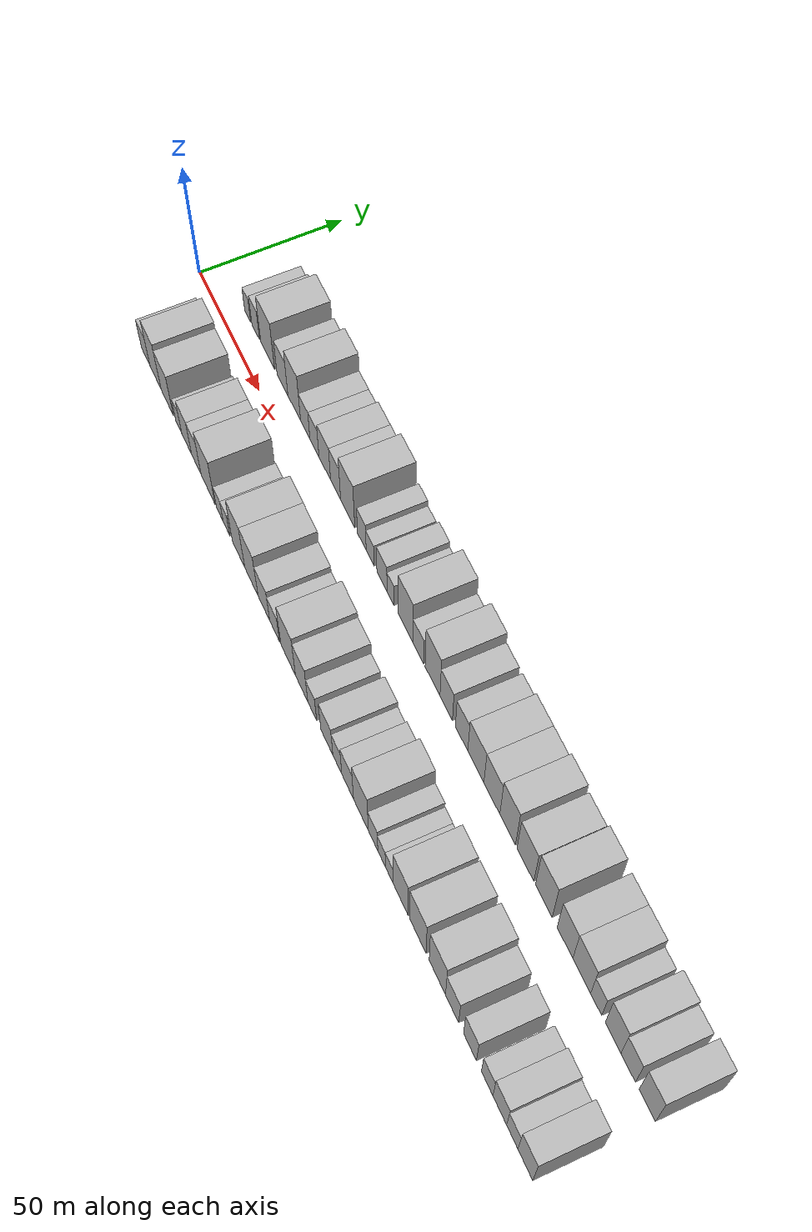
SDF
<sdf version="1.6">
 <world name="default">
  <scene>
   <sky><clouds><speed>12</speed></clouds></sky>
   <ambient>0.4 0.4 0.4 1</ambient>
   <background>0.7 0.7 0.7 1</background>
   <shadows>1</shadows>
  </scene>
  <gravity>0 0 -9.8066</gravity>
  <magnetic_field>6e-06 2.3e-05 -4.2e-05</magnetic_field>
  <physics default="0" name="default_physics" type="ode">
   <ode>
    <solver>
     <type>quick</type>
     <iters>10</iters>
     <sor>1.0</sor>
     <use_dynamic_moi_rescaling>0</use_dynamic_moi_rescaling>
    </solver>
    <constraints>
     <cfm>0</cfm>
     <erp>0.2</erp>
     <contact_max_correcting_vel>100</contact_max_correcting_vel>
     <contact_surface_layer>0.001</contact_surface_layer>
    </constraints>
   </ode>
   <max_step_size>0.004</max_step_size>
   <real_time_factor>1</real_time_factor>
   <real_time_update_rate>250</real_time_update_rate>
  </physics>
  <light name="sun" type="directional">
   <pose>0 0 10 0 0 0</pose>
   <diffuse>0.8 0.8 0.8 1</diffuse>
   <specular>0.2 0.2 0.2 1</specular>
   <attenuation>
    <range>1000</range>
    <constant>0.9</constant>
    <linear>0.01</linear>
    <quadratic>0.001</quadratic>
   </attenuation>
   <direction>-0.5 0.1 -0.9</direction>
  </light>
  <model name="building_1">
   <static>1</static>
   <pose>22.5094 17.5000 0 0.000000 0.000000 1.570796</pose>
   <link name="link">
    <pose>0 0 6.00 0 0 0</pose>
    <collision name="collision"><geometry><box><size>20.0000 5.0188 12.0000</size></box></geometry></collision>
    <visual name="visual">
     <cast_shadows>0</cast_shadows>
     <geometry><box><size>20.0000 5.0188 12.0000</size></box></geometry>
     <material>
      <script>
       <uri>model://HANNAS_wall/materials/scripts</uri>
       <uri>model://HANNAS_wall/materials/textures</uri>
       <name>vrc/HANNAS_wall</name>
      </script>
     </material>
    </visual>
   </link>
  </model>
  <model name="building_2">
   <static>1</static>
   <pose>29.2193 17.5000 0 0.000000 0.000000 1.570796</pose>
   <link name="link">
    <pose>0 0 7.50 0 0 0</pose>
    <collision name="collision"><geometry><box><size>20.0000 6.4010 15.0000</size></box></geometry></collision>
    <visual name="visual">
     <cast_shadows>0</cast_shadows>
     <geometry><box><size>20.0000 6.4010 15.0000</size></box></geometry>
     <material>
      <script>
       <uri>model://HANNAS_wall/materials/scripts</uri>
       <uri>model://HANNAS_wall/materials/textures</uri>
       <name>vrc/HANNAS_wall</name>
      </script>
     </material>
    </visual>
   </link>
  </model>
  <model name="building_3">
   <static>1</static>
   <pose>39.0551 17.5000 0 0.000000 0.000000 1.570796</pose>
   <link name="link">
    <pose>0 0 12.00 0 0 0</pose>
    <collision name="collision"><geometry><box><size>20.0000 11.2708 24.0000</size></box></geometry></collision>
    <visual name="visual">
     <cast_shadows>0</cast_shadows>
     <geometry><box><size>20.0000 11.2708 24.0000</size></box></geometry>
     <material>
      <script>
       <uri>model://HANNAS_wall/materials/scripts</uri>
       <uri>model://HANNAS_wall/materials/textures</uri>
       <name>vrc/HANNAS_wall</name>
      </script>
     </material>
    </visual>
   </link>
  </model>
  <model name="building_4">
   <static>1</static>
   <pose>51.0926 17.5000 0 0.000000 0.000000 1.570796</pose>
   <link name="link">
    <pose>0 0 9.00 0 0 0</pose>
    <collision name="collision"><geometry><box><size>20.0000 8.8041 18.0000</size></box></geometry></collision>
    <visual name="visual">
     <cast_shadows>0</cast_shadows>
     <geometry><box><size>20.0000 8.8041 18.0000</size></box></geometry>
     <material>
      <script>
       <uri>model://HANNAS_wall/materials/scripts</uri>
       <uri>model://HANNAS_wall/materials/textures</uri>
       <name>vrc/HANNAS_wall</name>
      </script>
     </material>
    </visual>
   </link>
  </model>
  <model name="building_5">
   <static>1</static>
   <pose>60.5405 17.5000 0 0.000000 0.000000 1.570796</pose>
   <link name="link">
    <pose>0 0 12.00 0 0 0</pose>
    <collision name="collision"><geometry><box><size>20.0000 10.0916 24.0000</size></box></geometry></collision>
    <visual name="visual">
     <cast_shadows>0</cast_shadows>
     <geometry><box><size>20.0000 10.0916 24.0000</size></box></geometry>
     <material>
      <script>
       <uri>model://HANNAS_wall/materials/scripts</uri>
       <uri>model://HANNAS_wall/materials/textures</uri>
       <name>vrc/HANNAS_wall</name>
      </script>
     </material>
    </visual>
   </link>
  </model>
  <model name="building_6">
   <static>1</static>
   <pose>69.2399 17.5000 0 0.000000 0.000000 1.570796</pose>
   <link name="link">
    <pose>0 0 7.50 0 0 0</pose>
    <collision name="collision"><geometry><box><size>20.0000 7.3073 15.0000</size></box></geometry></collision>
    <visual name="visual">
     <cast_shadows>0</cast_shadows>
     <geometry><box><size>20.0000 7.3073 15.0000</size></box></geometry>
     <material>
      <script>
       <uri>model://HANNAS_wall/materials/scripts</uri>
       <uri>model://HANNAS_wall/materials/textures</uri>
       <name>vrc/HANNAS_wall</name>
      </script>
     </material>
    </visual>
   </link>
  </model>
  <model name="building_7">
   <static>1</static>
   <pose>76.4125 17.5000 0 0.000000 0.000000 1.570796</pose>
   <link name="link">
    <pose>0 0 7.50 0 0 0</pose>
    <collision name="collision"><geometry><box><size>20.0000 7.0379 15.0000</size></box></geometry></collision>
    <visual name="visual">
     <cast_shadows>0</cast_shadows>
     <geometry><box><size>20.0000 7.0379 15.0000</size></box></geometry>
     <material>
      <script>
       <uri>model://HANNAS_wall/materials/scripts</uri>
       <uri>model://HANNAS_wall/materials/textures</uri>
       <name>vrc/HANNAS_wall</name>
      </script>
     </material>
    </visual>
   </link>
  </model>
  <model name="building_8">
   <static>1</static>
   <pose>84.3619 17.5000 0 0.000000 0.000000 1.570796</pose>
   <link name="link">
    <pose>0 0 9.00 0 0 0</pose>
    <collision name="collision"><geometry><box><size>20.0000 8.8611 18.0000</size></box></geometry></collision>
    <visual name="visual">
     <cast_shadows>0</cast_shadows>
     <geometry><box><size>20.0000 8.8611 18.0000</size></box></geometry>
     <material>
      <script>
       <uri>model://HANNAS_wall/materials/scripts</uri>
       <uri>model://HANNAS_wall/materials/textures</uri>
       <name>vrc/HANNAS_wall</name>
      </script>
     </material>
    </visual>
   </link>
  </model>
  <model name="building_9">
   <static>1</static>
   <pose>92.5973 17.5000 0 0.000000 0.000000 1.570796</pose>
   <link name="link">
    <pose>0 0 9.00 0 0 0</pose>
    <collision name="collision"><geometry><box><size>20.0000 7.6096 18.0000</size></box></geometry></collision>
    <visual name="visual">
     <cast_shadows>0</cast_shadows>
     <geometry><box><size>20.0000 7.6096 18.0000</size></box></geometry>
     <material>
      <script>
       <uri>model://HANNAS_wall/materials/scripts</uri>
       <uri>model://HANNAS_wall/materials/textures</uri>
       <name>vrc/HANNAS_wall</name>
      </script>
     </material>
    </visual>
   </link>
  </model>
  <model name="building_10">
   <static>1</static>
   <pose>101.7168 17.5000 0 0.000000 0.000000 1.570796</pose>
   <link name="link">
    <pose>0 0 12.00 0 0 0</pose>
    <collision name="collision"><geometry><box><size>20.0000 10.6294 24.0000</size></box></geometry></collision>
    <visual name="visual">
     <cast_shadows>0</cast_shadows>
     <geometry><box><size>20.0000 10.6294 24.0000</size></box></geometry>
     <material>
      <script>
       <uri>model://HANNAS_wall/materials/scripts</uri>
       <uri>model://HANNAS_wall/materials/textures</uri>
       <name>vrc/HANNAS_wall</name>
      </script>
     </material>
    </visual>
   </link>
  </model>
  <model name="building_11">
   <static>1</static>
   <pose>112.2217 17.5000 0 0.000000 0.000000 1.570796</pose>
   <link name="link">
    <pose>0 0 7.50 0 0 0</pose>
    <collision name="collision"><geometry><box><size>20.0000 6.3804 15.0000</size></box></geometry></collision>
    <visual name="visual">
     <cast_shadows>0</cast_shadows>
     <geometry><box><size>20.0000 6.3804 15.0000</size></box></geometry>
     <material>
      <script>
       <uri>model://HANNAS_wall/materials/scripts</uri>
       <uri>model://HANNAS_wall/materials/textures</uri>
       <name>vrc/HANNAS_wall</name>
      </script>
     </material>
    </visual>
   </link>
  </model>
  <model name="building_12">
   <static>1</static>
   <pose>118.2914 17.5000 0 0.000000 0.000000 1.570796</pose>
   <link name="link">
    <pose>0 0 6.00 0 0 0</pose>
    <collision name="collision"><geometry><box><size>20.0000 5.7588 12.0000</size></box></geometry></collision>
    <visual name="visual">
     <cast_shadows>0</cast_shadows>
     <geometry><box><size>20.0000 5.7588 12.0000</size></box></geometry>
     <material>
      <script>
       <uri>model://HANNAS_wall/materials/scripts</uri>
       <uri>model://HANNAS_wall/materials/textures</uri>
       <name>vrc/HANNAS_wall</name>
      </script>
     </material>
    </visual>
   </link>
  </model>
  <model name="building_13">
   <static>1</static>
   <pose>126.8574 17.5000 0 0.000000 0.000000 1.570796</pose>
   <link name="link">
    <pose>0 0 7.50 0 0 0</pose>
    <collision name="collision"><geometry><box><size>20.0000 7.3732 15.0000</size></box></geometry></collision>
    <visual name="visual">
     <cast_shadows>0</cast_shadows>
     <geometry><box><size>20.0000 7.3732 15.0000</size></box></geometry>
     <material>
      <script>
       <uri>model://HANNAS_wall/materials/scripts</uri>
       <uri>model://HANNAS_wall/materials/textures</uri>
       <name>vrc/HANNAS_wall</name>
      </script>
     </material>
    </visual>
   </link>
  </model>
  <model name="building_14">
   <static>1</static>
   <pose>133.0565 17.5000 0 0.000000 0.000000 1.570796</pose>
   <link name="link">
    <pose>0 0 6.00 0 0 0</pose>
    <collision name="collision"><geometry><box><size>20.0000 5.0249 12.0000</size></box></geometry></collision>
    <visual name="visual">
     <cast_shadows>0</cast_shadows>
     <geometry><box><size>20.0000 5.0249 12.0000</size></box></geometry>
     <material>
      <script>
       <uri>model://HANNAS_wall/materials/scripts</uri>
       <uri>model://HANNAS_wall/materials/textures</uri>
       <name>vrc/HANNAS_wall</name>
      </script>
     </material>
    </visual>
   </link>
  </model>
  <model name="building_15">
   <static>1</static>
   <pose>143.6724 17.5000 0 0.000000 0.000000 1.570796</pose>
   <link name="link">
    <pose>0 0 12.00 0 0 0</pose>
    <collision name="collision"><geometry><box><size>20.0000 10.2068 24.0000</size></box></geometry></collision>
    <visual name="visual">
     <cast_shadows>0</cast_shadows>
     <geometry><box><size>20.0000 10.2068 24.0000</size></box></geometry>
     <material>
      <script>
       <uri>model://HANNAS_wall/materials/scripts</uri>
       <uri>model://HANNAS_wall/materials/textures</uri>
       <name>vrc/HANNAS_wall</name>
      </script>
     </material>
    </visual>
   </link>
  </model>
  <model name="building_16">
   <static>1</static>
   <pose>152.4874 17.5000 0 0.000000 0.000000 1.570796</pose>
   <link name="link">
    <pose>0 0 7.50 0 0 0</pose>
    <collision name="collision"><geometry><box><size>20.0000 7.4232 15.0000</size></box></geometry></collision>
    <visual name="visual">
     <cast_shadows>0</cast_shadows>
     <geometry><box><size>20.0000 7.4232 15.0000</size></box></geometry>
     <material>
      <script>
       <uri>model://HANNAS_wall/materials/scripts</uri>
       <uri>model://HANNAS_wall/materials/textures</uri>
       <name>vrc/HANNAS_wall</name>
      </script>
     </material>
    </visual>
   </link>
  </model>
  <model name="building_17">
   <static>1</static>
   <pose>162.2632 17.5000 0 0.000000 0.000000 1.570796</pose>
   <link name="link">
    <pose>0 0 12.00 0 0 0</pose>
    <collision name="collision"><geometry><box><size>20.0000 10.1284 24.0000</size></box></geometry></collision>
    <visual name="visual">
     <cast_shadows>0</cast_shadows>
     <geometry><box><size>20.0000 10.1284 24.0000</size></box></geometry>
     <material>
      <script>
       <uri>model://HANNAS_wall/materials/scripts</uri>
       <uri>model://HANNAS_wall/materials/textures</uri>
       <name>vrc/HANNAS_wall</name>
      </script>
     </material>
    </visual>
   </link>
  </model>
  <model name="building_18">
   <static>1</static>
   <pose>171.4944 17.5000 0 0.000000 0.000000 1.570796</pose>
   <link name="link">
    <pose>0 0 9.00 0 0 0</pose>
    <collision name="collision"><geometry><box><size>20.0000 8.3341 18.0000</size></box></geometry></collision>
    <visual name="visual">
     <cast_shadows>0</cast_shadows>
     <geometry><box><size>20.0000 8.3341 18.0000</size></box></geometry>
     <material>
      <script>
       <uri>model://HANNAS_wall/materials/scripts</uri>
       <uri>model://HANNAS_wall/materials/textures</uri>
       <name>vrc/HANNAS_wall</name>
      </script>
     </material>
    </visual>
   </link>
  </model>
  <model name="building_19">
   <static>1</static>
   <pose>181.7442 17.5000 0 0.000000 0.000000 1.570796</pose>
   <link name="link">
    <pose>0 0 9.00 0 0 0</pose>
    <collision name="collision"><geometry><box><size>20.0000 8.1655 18.0000</size></box></geometry></collision>
    <visual name="visual">
     <cast_shadows>0</cast_shadows>
     <geometry><box><size>20.0000 8.1655 18.0000</size></box></geometry>
     <material>
      <script>
       <uri>model://HANNAS_wall/materials/scripts</uri>
       <uri>model://HANNAS_wall/materials/textures</uri>
       <name>vrc/HANNAS_wall</name>
      </script>
     </material>
    </visual>
   </link>
  </model>
  <model name="building_20">
   <static>1</static>
   <pose>191.0521 17.5000 0 0.000000 0.000000 1.570796</pose>
   <link name="link">
    <pose>0 0 10.50 0 0 0</pose>
    <collision name="collision"><geometry><box><size>20.0000 10.4504 21.0000</size></box></geometry></collision>
    <visual name="visual">
     <cast_shadows>0</cast_shadows>
     <geometry><box><size>20.0000 10.4504 21.0000</size></box></geometry>
     <material>
      <script>
       <uri>model://HANNAS_wall/materials/scripts</uri>
       <uri>model://HANNAS_wall/materials/textures</uri>
       <name>vrc/HANNAS_wall</name>
      </script>
     </material>
    </visual>
   </link>
  </model>
  <model name="building_21">
   <static>1</static>
   <pose>201.3887 17.5000 0 0.000000 0.000000 1.570796</pose>
   <link name="link">
    <pose>0 0 10.50 0 0 0</pose>
    <collision name="collision"><geometry><box><size>20.0000 10.2229 21.0000</size></box></geometry></collision>
    <visual name="visual">
     <cast_shadows>0</cast_shadows>
     <geometry><box><size>20.0000 10.2229 21.0000</size></box></geometry>
     <material>
      <script>
       <uri>model://HANNAS_wall/materials/scripts</uri>
       <uri>model://HANNAS_wall/materials/textures</uri>
       <name>vrc/HANNAS_wall</name>
      </script>
     </material>
    </visual>
   </link>
  </model>
  <model name="building_22">
   <static>1</static>
   <pose>211.4315 17.5000 0 0.000000 0.000000 1.570796</pose>
   <link name="link">
    <pose>0 0 12.00 0 0 0</pose>
    <collision name="collision"><geometry><box><size>20.0000 9.8627 24.0000</size></box></geometry></collision>
    <visual name="visual">
     <cast_shadows>0</cast_shadows>
     <geometry><box><size>20.0000 9.8627 24.0000</size></box></geometry>
     <material>
      <script>
       <uri>model://HANNAS_wall/materials/scripts</uri>
       <uri>model://HANNAS_wall/materials/textures</uri>
       <name>vrc/HANNAS_wall</name>
      </script>
     </material>
    </visual>
   </link>
  </model>
  <model name="building_23">
   <static>1</static>
   <pose>222.5453 17.5000 0 0.000000 0.000000 1.570796</pose>
   <link name="link">
    <pose>0 0 10.50 0 0 0</pose>
    <collision name="collision"><geometry><box><size>20.0000 10.3650 21.0000</size></box></geometry></collision>
    <visual name="visual">
     <cast_shadows>0</cast_shadows>
     <geometry><box><size>20.0000 10.3650 21.0000</size></box></geometry>
     <material>
      <script>
       <uri>model://HANNAS_wall/materials/scripts</uri>
       <uri>model://HANNAS_wall/materials/textures</uri>
       <name>vrc/HANNAS_wall</name>
      </script>
     </material>
    </visual>
   </link>
  </model>
  <model name="building_24">
   <static>1</static>
   <pose>233.7784 17.5000 0 0.000000 0.000000 1.570796</pose>
   <link name="link">
    <pose>0 0 12.00 0 0 0</pose>
    <collision name="collision"><geometry><box><size>20.0000 10.1011 24.0000</size></box></geometry></collision>
    <visual name="visual">
     <cast_shadows>0</cast_shadows>
     <geometry><box><size>20.0000 10.1011 24.0000</size></box></geometry>
     <material>
      <script>
       <uri>model://HANNAS_wall/materials/scripts</uri>
       <uri>model://HANNAS_wall/materials/textures</uri>
       <name>vrc/HANNAS_wall</name>
      </script>
     </material>
    </visual>
   </link>
  </model>
  <model name="building_25">
   <static>1</static>
   <pose>246.5001 17.5000 0 0.000000 0.000000 1.570796</pose>
   <link name="link">
    <pose>0 0 10.50 0 0 0</pose>
    <collision name="collision"><geometry><box><size>20.0000 9.3423 21.0000</size></box></geometry></collision>
    <visual name="visual">
     <cast_shadows>0</cast_shadows>
     <geometry><box><size>20.0000 9.3423 21.0000</size></box></geometry>
     <material>
      <script>
       <uri>model://HANNAS_wall/materials/scripts</uri>
       <uri>model://HANNAS_wall/materials/textures</uri>
       <name>vrc/HANNAS_wall</name>
      </script>
     </material>
    </visual>
   </link>
  </model>
  <model name="building_26">
   <static>1</static>
   <pose>256.3676 17.5000 0 0.000000 0.000000 1.570796</pose>
   <link name="link">
    <pose>0 0 10.50 0 0 0</pose>
    <collision name="collision"><geometry><box><size>20.0000 10.3927 21.0000</size></box></geometry></collision>
    <visual name="visual">
     <cast_shadows>0</cast_shadows>
     <geometry><box><size>20.0000 10.3927 21.0000</size></box></geometry>
     <material>
      <script>
       <uri>model://HANNAS_wall/materials/scripts</uri>
       <uri>model://HANNAS_wall/materials/textures</uri>
       <name>vrc/HANNAS_wall</name>
      </script>
     </material>
    </visual>
   </link>
  </model>
  <model name="building_27">
   <static>1</static>
   <pose>264.7600 17.5000 0 0.000000 0.000000 1.570796</pose>
   <link name="link">
    <pose>0 0 7.50 0 0 0</pose>
    <collision name="collision"><geometry><box><size>20.0000 6.3921 15.0000</size></box></geometry></collision>
    <visual name="visual">
     <cast_shadows>0</cast_shadows>
     <geometry><box><size>20.0000 6.3921 15.0000</size></box></geometry>
     <material>
      <script>
       <uri>model://HANNAS_wall/materials/scripts</uri>
       <uri>model://HANNAS_wall/materials/textures</uri>
       <name>vrc/HANNAS_wall</name>
      </script>
     </material>
    </visual>
   </link>
  </model>
  <model name="building_28">
   <static>1</static>
   <pose>274.4199 17.5000 0 0.000000 0.000000 1.570796</pose>
   <link name="link">
    <pose>0 0 10.50 0 0 0</pose>
    <collision name="collision"><geometry><box><size>20.0000 8.9277 21.0000</size></box></geometry></collision>
    <visual name="visual">
     <cast_shadows>0</cast_shadows>
     <geometry><box><size>20.0000 8.9277 21.0000</size></box></geometry>
     <material>
      <script>
       <uri>model://HANNAS_wall/materials/scripts</uri>
       <uri>model://HANNAS_wall/materials/textures</uri>
       <name>vrc/HANNAS_wall</name>
      </script>
     </material>
    </visual>
   </link>
  </model>
  <model name="building_29">
   <static>1</static>
   <pose>282.9135 17.5000 0 0.000000 0.000000 1.570796</pose>
   <link name="link">
    <pose>0 0 9.00 0 0 0</pose>
    <collision name="collision"><geometry><box><size>20.0000 8.0595 18.0000</size></box></geometry></collision>
    <visual name="visual">
     <cast_shadows>0</cast_shadows>
     <geometry><box><size>20.0000 8.0595 18.0000</size></box></geometry>
     <material>
      <script>
       <uri>model://HANNAS_wall/materials/scripts</uri>
       <uri>model://HANNAS_wall/materials/textures</uri>
       <name>vrc/HANNAS_wall</name>
      </script>
     </material>
    </visual>
   </link>
  </model>
  <model name="building_30">
   <static>1</static>
   <pose>293.4200 17.5000 0 0.000000 0.000000 1.570796</pose>
   <link name="link">
    <pose>0 0 10.50 0 0 0</pose>
    <collision name="collision"><geometry><box><size>20.0000 8.9536 21.0000</size></box></geometry></collision>
    <visual name="visual">
     <cast_shadows>0</cast_shadows>
     <geometry><box><size>20.0000 8.9536 21.0000</size></box></geometry>
     <material>
      <script>
       <uri>model://HANNAS_wall/materials/scripts</uri>
       <uri>model://HANNAS_wall/materials/textures</uri>
       <name>vrc/HANNAS_wall</name>
      </script>
     </material>
    </visual>
   </link>
  </model>
  <model name="building_31">
   <static>1</static>
   <pose>23.7137 -17.5000 0 0.000000 0.000000 1.570796</pose>
   <link name="link">
    <pose>0 0 7.50 0 0 0</pose>
    <collision name="collision"><geometry><box><size>20.0000 7.4273 15.0000</size></box></geometry></collision>
    <visual name="visual">
     <cast_shadows>0</cast_shadows>
     <geometry><box><size>20.0000 7.4273 15.0000</size></box></geometry>
     <material>
      <script>
       <uri>model://HANNAS_wall/materials/scripts</uri>
       <uri>model://HANNAS_wall/materials/textures</uri>
       <name>vrc/HANNAS_wall</name>
      </script>
     </material>
    </visual>
   </link>
  </model>
  <model name="building_32">
   <static>1</static>
   <pose>32.3466 -17.5000 0 0.000000 0.000000 1.570796</pose>
   <link name="link">
    <pose>0 0 12.00 0 0 0</pose>
    <collision name="collision"><geometry><box><size>20.0000 9.8386 24.0000</size></box></geometry></collision>
    <visual name="visual">
     <cast_shadows>0</cast_shadows>
     <geometry><box><size>20.0000 9.8386 24.0000</size></box></geometry>
     <material>
      <script>
       <uri>model://HANNAS_wall/materials/scripts</uri>
       <uri>model://HANNAS_wall/materials/textures</uri>
       <name>vrc/HANNAS_wall</name>
      </script>
     </material>
    </visual>
   </link>
  </model>
  <model name="building_33">
   <static>1</static>
   <pose>42.4667 -17.5000 0 0.000000 0.000000 1.570796</pose>
   <link name="link">
    <pose>0 0 10.50 0 0 0</pose>
    <collision name="collision"><geometry><box><size>20.0000 10.4016 21.0000</size></box></geometry></collision>
    <visual name="visual">
     <cast_shadows>0</cast_shadows>
     <geometry><box><size>20.0000 10.4016 21.0000</size></box></geometry>
     <material>
      <script>
       <uri>model://HANNAS_wall/materials/scripts</uri>
       <uri>model://HANNAS_wall/materials/textures</uri>
       <name>vrc/HANNAS_wall</name>
      </script>
     </material>
    </visual>
   </link>
  </model>
  <model name="building_34">
   <static>1</static>
   <pose>52.2176 -17.5000 0 0.000000 0.000000 1.570796</pose>
   <link name="link">
    <pose>0 0 6.00 0 0 0</pose>
    <collision name="collision"><geometry><box><size>20.0000 5.1002 12.0000</size></box></geometry></collision>
    <visual name="visual">
     <cast_shadows>0</cast_shadows>
     <geometry><box><size>20.0000 5.1002 12.0000</size></box></geometry>
     <material>
      <script>
       <uri>model://HANNAS_wall/materials/scripts</uri>
       <uri>model://HANNAS_wall/materials/textures</uri>
       <name>vrc/HANNAS_wall</name>
      </script>
     </material>
    </visual>
   </link>
  </model>
  <model name="building_35">
   <static>1</static>
   <pose>58.9409 -17.5000 0 0.000000 0.000000 1.570796</pose>
   <link name="link">
    <pose>0 0 9.00 0 0 0</pose>
    <collision name="collision"><geometry><box><size>20.0000 8.3465 18.0000</size></box></geometry></collision>
    <visual name="visual">
     <cast_shadows>0</cast_shadows>
     <geometry><box><size>20.0000 8.3465 18.0000</size></box></geometry>
     <material>
      <script>
       <uri>model://HANNAS_wall/materials/scripts</uri>
       <uri>model://HANNAS_wall/materials/textures</uri>
       <name>vrc/HANNAS_wall</name>
      </script>
     </material>
    </visual>
   </link>
  </model>
  <model name="building_36">
   <static>1</static>
   <pose>67.0634 -17.5000 0 0.000000 0.000000 1.570796</pose>
   <link name="link">
    <pose>0 0 9.00 0 0 0</pose>
    <collision name="collision"><geometry><box><size>20.0000 7.8986 18.0000</size></box></geometry></collision>
    <visual name="visual">
     <cast_shadows>0</cast_shadows>
     <geometry><box><size>20.0000 7.8986 18.0000</size></box></geometry>
     <material>
      <script>
       <uri>model://HANNAS_wall/materials/scripts</uri>
       <uri>model://HANNAS_wall/materials/textures</uri>
       <name>vrc/HANNAS_wall</name>
      </script>
     </material>
    </visual>
   </link>
  </model>
  <model name="building_37">
   <static>1</static>
   <pose>76.7283 -17.5000 0 0.000000 0.000000 1.570796</pose>
   <link name="link">
    <pose>0 0 12.00 0 0 0</pose>
    <collision name="collision"><geometry><box><size>20.0000 11.4311 24.0000</size></box></geometry></collision>
    <visual name="visual">
     <cast_shadows>0</cast_shadows>
     <geometry><box><size>20.0000 11.4311 24.0000</size></box></geometry>
     <material>
      <script>
       <uri>model://HANNAS_wall/materials/scripts</uri>
       <uri>model://HANNAS_wall/materials/textures</uri>
       <name>vrc/HANNAS_wall</name>
      </script>
     </material>
    </visual>
   </link>
  </model>
  <model name="building_38">
   <static>1</static>
   <pose>86.1244 -17.5000 0 0.000000 0.000000 1.570796</pose>
   <link name="link">
    <pose>0 0 6.00 0 0 0</pose>
    <collision name="collision"><geometry><box><size>20.0000 5.3612 12.0000</size></box></geometry></collision>
    <visual name="visual">
     <cast_shadows>0</cast_shadows>
     <geometry><box><size>20.0000 5.3612 12.0000</size></box></geometry>
     <material>
      <script>
       <uri>model://HANNAS_wall/materials/scripts</uri>
       <uri>model://HANNAS_wall/materials/textures</uri>
       <name>vrc/HANNAS_wall</name>
      </script>
     </material>
    </visual>
   </link>
  </model>
  <model name="building_39">
   <static>1</static>
   <pose>91.4952 -17.5000 0 0.000000 0.000000 1.570796</pose>
   <link name="link">
    <pose>0 0 6.00 0 0 0</pose>
    <collision name="collision"><geometry><box><size>20.0000 5.3804 12.0000</size></box></geometry></collision>
    <visual name="visual">
     <cast_shadows>0</cast_shadows>
     <geometry><box><size>20.0000 5.3804 12.0000</size></box></geometry>
     <material>
      <script>
       <uri>model://HANNAS_wall/materials/scripts</uri>
       <uri>model://HANNAS_wall/materials/textures</uri>
       <name>vrc/HANNAS_wall</name>
      </script>
     </material>
    </visual>
   </link>
  </model>
  <model name="building_40">
   <static>1</static>
   <pose>101.0883 -17.5000 0 0.000000 0.000000 1.570796</pose>
   <link name="link">
    <pose>0 0 12.00 0 0 0</pose>
    <collision name="collision"><geometry><box><size>20.0000 9.8059 24.0000</size></box></geometry></collision>
    <visual name="visual">
     <cast_shadows>0</cast_shadows>
     <geometry><box><size>20.0000 9.8059 24.0000</size></box></geometry>
     <material>
      <script>
       <uri>model://HANNAS_wall/materials/scripts</uri>
       <uri>model://HANNAS_wall/materials/textures</uri>
       <name>vrc/HANNAS_wall</name>
      </script>
     </material>
    </visual>
   </link>
  </model>
  <model name="building_41">
   <static>1</static>
   <pose>111.1877 -17.5000 0 0.000000 0.000000 1.570796</pose>
   <link name="link">
    <pose>0 0 12.00 0 0 0</pose>
    <collision name="collision"><geometry><box><size>20.0000 10.3929 24.0000</size></box></geometry></collision>
    <visual name="visual">
     <cast_shadows>0</cast_shadows>
     <geometry><box><size>20.0000 10.3929 24.0000</size></box></geometry>
     <material>
      <script>
       <uri>model://HANNAS_wall/materials/scripts</uri>
       <uri>model://HANNAS_wall/materials/textures</uri>
       <name>vrc/HANNAS_wall</name>
      </script>
     </material>
    </visual>
   </link>
  </model>
  <model name="building_42">
   <static>1</static>
   <pose>120.8111 -17.5000 0 0.000000 0.000000 1.570796</pose>
   <link name="link">
    <pose>0 0 9.00 0 0 0</pose>
    <collision name="collision"><geometry><box><size>20.0000 8.8539 18.0000</size></box></geometry></collision>
    <visual name="visual">
     <cast_shadows>0</cast_shadows>
     <geometry><box><size>20.0000 8.8539 18.0000</size></box></geometry>
     <material>
      <script>
       <uri>model://HANNAS_wall/materials/scripts</uri>
       <uri>model://HANNAS_wall/materials/textures</uri>
       <name>vrc/HANNAS_wall</name>
      </script>
     </material>
    </visual>
   </link>
  </model>
  <model name="building_43">
   <static>1</static>
   <pose>128.9252 -17.5000 0 0.000000 0.000000 1.570796</pose>
   <link name="link">
    <pose>0 0 7.50 0 0 0</pose>
    <collision name="collision"><geometry><box><size>20.0000 7.3743 15.0000</size></box></geometry></collision>
    <visual name="visual">
     <cast_shadows>0</cast_shadows>
     <geometry><box><size>20.0000 7.3743 15.0000</size></box></geometry>
     <material>
      <script>
       <uri>model://HANNAS_wall/materials/scripts</uri>
       <uri>model://HANNAS_wall/materials/textures</uri>
       <name>vrc/HANNAS_wall</name>
      </script>
     </material>
    </visual>
   </link>
  </model>
  <model name="building_44">
   <static>1</static>
   <pose>139.0421 -17.5000 0 0.000000 0.000000 1.570796</pose>
   <link name="link">
    <pose>0 0 12.00 0 0 0</pose>
    <collision name="collision"><geometry><box><size>20.0000 10.8595 24.0000</size></box></geometry></collision>
    <visual name="visual">
     <cast_shadows>0</cast_shadows>
     <geometry><box><size>20.0000 10.8595 24.0000</size></box></geometry>
     <material>
      <script>
       <uri>model://HANNAS_wall/materials/scripts</uri>
       <uri>model://HANNAS_wall/materials/textures</uri>
       <name>vrc/HANNAS_wall</name>
      </script>
     </material>
    </visual>
   </link>
  </model>
  <model name="building_45">
   <static>1</static>
   <pose>148.9780 -17.5000 0 0.000000 0.000000 1.570796</pose>
   <link name="link">
    <pose>0 0 10.50 0 0 0</pose>
    <collision name="collision"><geometry><box><size>20.0000 9.0123 21.0000</size></box></geometry></collision>
    <visual name="visual">
     <cast_shadows>0</cast_shadows>
     <geometry><box><size>20.0000 9.0123 21.0000</size></box></geometry>
     <material>
      <script>
       <uri>model://HANNAS_wall/materials/scripts</uri>
       <uri>model://HANNAS_wall/materials/textures</uri>
       <name>vrc/HANNAS_wall</name>
      </script>
     </material>
    </visual>
   </link>
  </model>
  <model name="building_46">
   <static>1</static>
   <pose>156.6527 -17.5000 0 0.000000 0.000000 1.570796</pose>
   <link name="link">
    <pose>0 0 7.50 0 0 0</pose>
    <collision name="collision"><geometry><box><size>20.0000 6.3372 15.0000</size></box></geometry></collision>
    <visual name="visual">
     <cast_shadows>0</cast_shadows>
     <geometry><box><size>20.0000 6.3372 15.0000</size></box></geometry>
     <material>
      <script>
       <uri>model://HANNAS_wall/materials/scripts</uri>
       <uri>model://HANNAS_wall/materials/textures</uri>
       <name>vrc/HANNAS_wall</name>
      </script>
     </material>
    </visual>
   </link>
  </model>
  <model name="building_47">
   <static>1</static>
   <pose>167.0912 -17.5000 0 0.000000 0.000000 1.570796</pose>
   <link name="link">
    <pose>0 0 9.00 0 0 0</pose>
    <collision name="collision"><geometry><box><size>20.0000 8.5398 18.0000</size></box></geometry></collision>
    <visual name="visual">
     <cast_shadows>0</cast_shadows>
     <geometry><box><size>20.0000 8.5398 18.0000</size></box></geometry>
     <material>
      <script>
       <uri>model://HANNAS_wall/materials/scripts</uri>
       <uri>model://HANNAS_wall/materials/textures</uri>
       <name>vrc/HANNAS_wall</name>
      </script>
     </material>
    </visual>
   </link>
  </model>
  <model name="building_48">
   <static>1</static>
   <pose>174.4822 -17.5000 0 0.000000 0.000000 1.570796</pose>
   <link name="link">
    <pose>0 0 7.50 0 0 0</pose>
    <collision name="collision"><geometry><box><size>20.0000 6.2421 15.0000</size></box></geometry></collision>
    <visual name="visual">
     <cast_shadows>0</cast_shadows>
     <geometry><box><size>20.0000 6.2421 15.0000</size></box></geometry>
     <material>
      <script>
       <uri>model://HANNAS_wall/materials/scripts</uri>
       <uri>model://HANNAS_wall/materials/textures</uri>
       <name>vrc/HANNAS_wall</name>
      </script>
     </material>
    </visual>
   </link>
  </model>
  <model name="building_49">
   <static>1</static>
   <pose>181.7102 -17.5000 0 0.000000 0.000000 1.570796</pose>
   <link name="link">
    <pose>0 0 9.00 0 0 0</pose>
    <collision name="collision"><geometry><box><size>20.0000 8.2139 18.0000</size></box></geometry></collision>
    <visual name="visual">
     <cast_shadows>0</cast_shadows>
     <geometry><box><size>20.0000 8.2139 18.0000</size></box></geometry>
     <material>
      <script>
       <uri>model://HANNAS_wall/materials/scripts</uri>
       <uri>model://HANNAS_wall/materials/textures</uri>
       <name>vrc/HANNAS_wall</name>
      </script>
     </material>
    </visual>
   </link>
  </model>
  <model name="building_50">
   <static>1</static>
   <pose>190.8973 -17.5000 0 0.000000 0.000000 1.570796</pose>
   <link name="link">
    <pose>0 0 12.00 0 0 0</pose>
    <collision name="collision"><geometry><box><size>20.0000 10.1602 24.0000</size></box></geometry></collision>
    <visual name="visual">
     <cast_shadows>0</cast_shadows>
     <geometry><box><size>20.0000 10.1602 24.0000</size></box></geometry>
     <material>
      <script>
       <uri>model://HANNAS_wall/materials/scripts</uri>
       <uri>model://HANNAS_wall/materials/textures</uri>
       <name>vrc/HANNAS_wall</name>
      </script>
     </material>
    </visual>
   </link>
  </model>
  <model name="building_51">
   <static>1</static>
   <pose>199.1300 -17.5000 0 0.000000 0.000000 1.570796</pose>
   <link name="link">
    <pose>0 0 7.50 0 0 0</pose>
    <collision name="collision"><geometry><box><size>20.0000 6.3051 15.0000</size></box></geometry></collision>
    <visual name="visual">
     <cast_shadows>0</cast_shadows>
     <geometry><box><size>20.0000 6.3051 15.0000</size></box></geometry>
     <material>
      <script>
       <uri>model://HANNAS_wall/materials/scripts</uri>
       <uri>model://HANNAS_wall/materials/textures</uri>
       <name>vrc/HANNAS_wall</name>
      </script>
     </material>
    </visual>
   </link>
  </model>
  <model name="building_52">
   <static>1</static>
   <pose>204.8406 -17.5000 0 0.000000 0.000000 1.570796</pose>
   <link name="link">
    <pose>0 0 6.00 0 0 0</pose>
    <collision name="collision"><geometry><box><size>20.0000 5.1161 12.0000</size></box></geometry></collision>
    <visual name="visual">
     <cast_shadows>0</cast_shadows>
     <geometry><box><size>20.0000 5.1161 12.0000</size></box></geometry>
     <material>
      <script>
       <uri>model://HANNAS_wall/materials/scripts</uri>
       <uri>model://HANNAS_wall/materials/textures</uri>
       <name>vrc/HANNAS_wall</name>
      </script>
     </material>
    </visual>
   </link>
  </model>
  <model name="building_53">
   <static>1</static>
   <pose>209.9921 -17.5000 0 0.000000 0.000000 1.570796</pose>
   <link name="link">
    <pose>0 0 6.00 0 0 0</pose>
    <collision name="collision"><geometry><box><size>20.0000 5.1870 12.0000</size></box></geometry></collision>
    <visual name="visual">
     <cast_shadows>0</cast_shadows>
     <geometry><box><size>20.0000 5.1870 12.0000</size></box></geometry>
     <material>
      <script>
       <uri>model://HANNAS_wall/materials/scripts</uri>
       <uri>model://HANNAS_wall/materials/textures</uri>
       <name>vrc/HANNAS_wall</name>
      </script>
     </material>
    </visual>
   </link>
  </model>
  <model name="building_54">
   <static>1</static>
   <pose>217.4739 -17.5000 0 0.000000 0.000000 1.570796</pose>
   <link name="link">
    <pose>0 0 12.00 0 0 0</pose>
    <collision name="collision"><geometry><box><size>20.0000 9.7765 24.0000</size></box></geometry></collision>
    <visual name="visual">
     <cast_shadows>0</cast_shadows>
     <geometry><box><size>20.0000 9.7765 24.0000</size></box></geometry>
     <material>
      <script>
       <uri>model://HANNAS_wall/materials/scripts</uri>
       <uri>model://HANNAS_wall/materials/textures</uri>
       <name>vrc/HANNAS_wall</name>
      </script>
     </material>
    </visual>
   </link>
  </model>
  <model name="building_55">
   <static>1</static>
   <pose>228.5708 -17.5000 0 0.000000 0.000000 1.570796</pose>
   <link name="link">
    <pose>0 0 12.00 0 0 0</pose>
    <collision name="collision"><geometry><box><size>20.0000 10.4175 24.0000</size></box></geometry></collision>
    <visual name="visual">
     <cast_shadows>0</cast_shadows>
     <geometry><box><size>20.0000 10.4175 24.0000</size></box></geometry>
     <material>
      <script>
       <uri>model://HANNAS_wall/materials/scripts</uri>
       <uri>model://HANNAS_wall/materials/textures</uri>
       <name>vrc/HANNAS_wall</name>
      </script>
     </material>
    </visual>
   </link>
  </model>
  <model name="building_56">
   <static>1</static>
   <pose>240.9191 -17.5000 0 0.000000 0.000000 1.570796</pose>
   <link name="link">
    <pose>0 0 12.00 0 0 0</pose>
    <collision name="collision"><geometry><box><size>20.0000 10.2790 24.0000</size></box></geometry></collision>
    <visual name="visual">
     <cast_shadows>0</cast_shadows>
     <geometry><box><size>20.0000 10.2790 24.0000</size></box></geometry>
     <material>
      <script>
       <uri>model://HANNAS_wall/materials/scripts</uri>
       <uri>model://HANNAS_wall/materials/textures</uri>
       <name>vrc/HANNAS_wall</name>
      </script>
     </material>
    </visual>
   </link>
  </model>
  <model name="building_57">
   <static>1</static>
   <pose>250.1173 -17.5000 0 0.000000 0.000000 1.570796</pose>
   <link name="link">
    <pose>0 0 9.00 0 0 0</pose>
    <collision name="collision"><geometry><box><size>20.0000 8.1175 18.0000</size></box></geometry></collision>
    <visual name="visual">
     <cast_shadows>0</cast_shadows>
     <geometry><box><size>20.0000 8.1175 18.0000</size></box></geometry>
     <material>
      <script>
       <uri>model://HANNAS_wall/materials/scripts</uri>
       <uri>model://HANNAS_wall/materials/textures</uri>
       <name>vrc/HANNAS_wall</name>
      </script>
     </material>
    </visual>
   </link>
  </model>
  <model name="building_58">
   <static>1</static>
   <pose>261.1020 -17.5000 0 0.000000 0.000000 1.570796</pose>
   <link name="link">
    <pose>0 0 9.00 0 0 0</pose>
    <collision name="collision"><geometry><box><size>20.0000 7.8519 18.0000</size></box></geometry></collision>
    <visual name="visual">
     <cast_shadows>0</cast_shadows>
     <geometry><box><size>20.0000 7.8519 18.0000</size></box></geometry>
     <material>
      <script>
       <uri>model://HANNAS_wall/materials/scripts</uri>
       <uri>model://HANNAS_wall/materials/textures</uri>
       <name>vrc/HANNAS_wall</name>
      </script>
     </material>
    </visual>
   </link>
  </model>
  <model name="building_59">
   <static>1</static>
   <pose>271.4540 -17.5000 0 0.000000 0.000000 1.570796</pose>
   <link name="link">
    <pose>0 0 7.50 0 0 0</pose>
    <collision name="collision"><geometry><box><size>20.0000 6.8521 15.0000</size></box></geometry></collision>
    <visual name="visual">
     <cast_shadows>0</cast_shadows>
     <geometry><box><size>20.0000 6.8521 15.0000</size></box></geometry>
     <material>
      <script>
       <uri>model://HANNAS_wall/materials/scripts</uri>
       <uri>model://HANNAS_wall/materials/textures</uri>
       <name>vrc/HANNAS_wall</name>
      </script>
     </material>
    </visual>
   </link>
  </model>
  <model name="building_60">
   <static>1</static>
   <pose>278.9196 -17.5000 0 0.000000 0.000000 1.570796</pose>
   <link name="link">
    <pose>0 0 9.00 0 0 0</pose>
    <collision name="collision"><geometry><box><size>20.0000 8.0791 18.0000</size></box></geometry></collision>
    <visual name="visual">
     <cast_shadows>0</cast_shadows>
     <geometry><box><size>20.0000 8.0791 18.0000</size></box></geometry>
     <material>
      <script>
       <uri>model://HANNAS_wall/materials/scripts</uri>
       <uri>model://HANNAS_wall/materials/textures</uri>
       <name>vrc/HANNAS_wall</name>
      </script>
     </material>
    </visual>
   </link>
  </model>
  <model name="building_61">
   <static>1</static>
   <pose>286.2541 -17.5000 0 0.000000 0.000000 1.570796</pose>
   <link name="link">
    <pose>0 0 7.50 0 0 0</pose>
    <collision name="collision"><geometry><box><size>20.0000 6.5898 15.0000</size></box></geometry></collision>
    <visual name="visual">
     <cast_shadows>0</cast_shadows>
     <geometry><box><size>20.0000 6.5898 15.0000</size></box></geometry>
     <material>
      <script>
       <uri>model://HANNAS_wall/materials/scripts</uri>
       <uri>model://HANNAS_wall/materials/textures</uri>
       <name>vrc/HANNAS_wall</name>
      </script>
     </material>
    </visual>
   </link>
  </model>
  <model name="building_62">
   <static>1</static>
   <pose>293.7851 -17.5000 0 0.000000 0.000000 1.570796</pose>
   <link name="link">
    <pose>0 0 10.50 0 0 0</pose>
    <collision name="collision"><geometry><box><size>20.0000 8.4722 21.0000</size></box></geometry></collision>
    <visual name="visual">
     <cast_shadows>0</cast_shadows>
     <geometry><box><size>20.0000 8.4722 21.0000</size></box></geometry>
     <material>
      <script>
       <uri>model://HANNAS_wall/materials/scripts</uri>
       <uri>model://HANNAS_wall/materials/textures</uri>
       <name>vrc/HANNAS_wall</name>
      </script>
     </material>
    </visual>
   </link>
  </model>
 </world>
</sdf>
